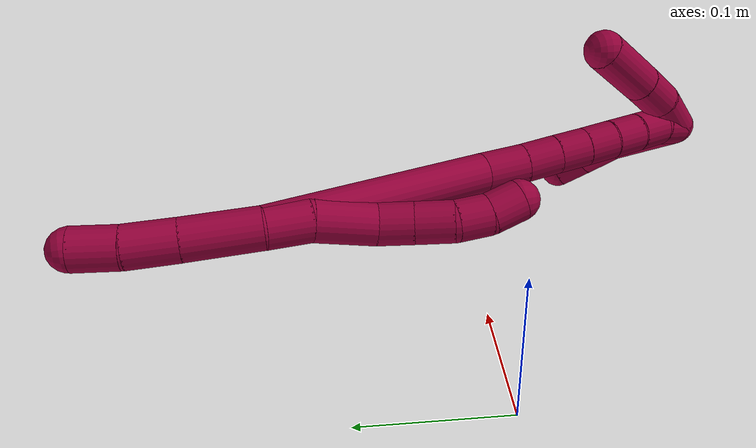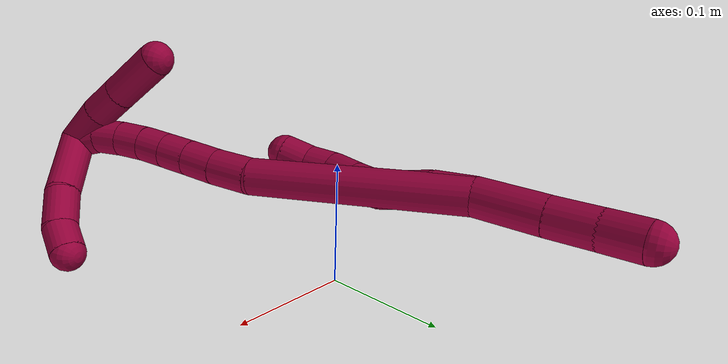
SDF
<sdf version="1.7">
 <world name="default">
  <model name="8">
   <static>0</static>
   <link name="8">
    <collision name="collision-cylinder-e_1_2_8">
     <pose>-8.3e-05 -0.001105 0.013192 0.08355 -0.006267 -0.000262</pose>
     <geometry><cylinder><radius>0.0125</radius><length>0.026476</length></cylinder></geometry>
     <surface>
      <friction><ode><mu>1.16</mu><mu2>1.16</mu2><slip1>0</slip1><slip2>0</slip2></ode></friction>
      <contact><ode><kp>1e+06</kp><kd>1</kd><max_vel>0</max_vel><min_depth>0.001</min_depth></ode></contact>
     </surface>
    </collision>
    <visual name="visual-cylinder-e_1_2_8">
     <pose>-8.3e-05 -0.001105 0.013192 0.08355 -0.006267 -0.000262</pose>
     <geometry><cylinder><radius>0.0125</radius><length>0.026476</length></cylinder></geometry>
     <material><ambient>0.584314 0 0.227451 1</ambient></material>
    </visual>
    <collision name="collision-cylinder-e_2_8_9">
     <pose>-0.004268 -0.003057 0.04482 0.045938 -0.218701 -0.005044</pose>
     <geometry><cylinder><radius>0.0125</radius><length>0.037814</length></cylinder></geometry>
     <surface>
      <friction><ode><mu>1.16</mu><mu2>1.16</mu2><slip1>0</slip1><slip2>0</slip2></ode></friction>
      <contact><ode><kp>1e+06</kp><kd>1</kd><max_vel>0</max_vel><min_depth>0.001</min_depth></ode></contact>
     </surface>
    </collision>
    <visual name="visual-cylinder-e_2_8_9">
     <pose>-0.004268 -0.003057 0.04482 0.045938 -0.218701 -0.005044</pose>
     <geometry><cylinder><radius>0.0125</radius><length>0.037814</length></cylinder></geometry>
     <material><ambient>0.584314 0 0.227451 1</ambient></material>
    </visual>
    <collision name="collision-cylinder-e_3_9_10">
     <pose>-0.008761 -0.001164 0.073826 -0.253764 -0.035816 0.004569</pose>
     <geometry><cylinder><radius>0.0125</radius><length>0.021851</length></cylinder></geometry>
     <surface>
      <friction><ode><mu>1.16</mu><mu2>1.16</mu2><slip1>0</slip1><slip2>0</slip2></ode></friction>
      <contact><ode><kp>1e+06</kp><kd>1</kd><max_vel>0</max_vel><min_depth>0.001</min_depth></ode></contact>
     </surface>
    </collision>
    <visual name="visual-cylinder-e_3_9_10">
     <pose>-0.008761 -0.001164 0.073826 -0.253764 -0.035816 0.004569</pose>
     <geometry><cylinder><radius>0.0125</radius><length>0.021851</length></cylinder></geometry>
     <material><ambient>0.584314 0 0.227451 1</ambient></material>
    </visual>
    <collision name="collision-cylinder-e_4_10_11">
     <pose>-0.009348 0.004868 0.095507 -0.287879 -0.016836 0.00244</pose>
     <geometry><cylinder><radius>0.0125</radius><length>0.023182</length></cylinder></geometry>
     <surface>
      <friction><ode><mu>1.16</mu><mu2>1.16</mu2><slip1>0</slip1><slip2>0</slip2></ode></friction>
      <contact><ode><kp>1e+06</kp><kd>1</kd><max_vel>0</max_vel><min_depth>0.001</min_depth></ode></contact>
     </surface>
    </collision>
    <visual name="visual-cylinder-e_4_10_11">
     <pose>-0.009348 0.004868 0.095507 -0.287879 -0.016836 0.00244</pose>
     <geometry><cylinder><radius>0.0125</radius><length>0.023182</length></cylinder></geometry>
     <material><ambient>0.584314 0 0.227451 1</ambient></material>
    </visual>
    <collision name="collision-cylinder-e_5_11_12">
     <pose>-0.008895 0.008292 0.116706 -0.01325 0.064175 -0.000425</pose>
     <geometry><cylinder><radius>0.0125</radius><length>0.020217</length></cylinder></geometry>
     <surface>
      <friction><ode><mu>1.16</mu><mu2>1.16</mu2><slip1>0</slip1><slip2>0</slip2></ode></friction>
      <contact><ode><kp>1e+06</kp><kd>1</kd><max_vel>0</max_vel><min_depth>0.001</min_depth></ode></contact>
     </surface>
    </collision>
    <visual name="visual-cylinder-e_5_11_12">
     <pose>-0.008895 0.008292 0.116706 -0.01325 0.064175 -0.000425</pose>
     <geometry><cylinder><radius>0.0125</radius><length>0.020217</length></cylinder></geometry>
     <material><ambient>0.584314 0 0.227451 1</ambient></material>
    </visual>
    <collision name="collision-cylinder-e_6_12_6">
     <pose>-0.00543 0.007775 0.136607 0.066229 0.278858 0.009298</pose>
     <geometry><cylinder><radius>0.0125</radius><length>0.02046</length></cylinder></geometry>
     <surface>
      <friction><ode><mu>1.16</mu><mu2>1.16</mu2><slip1>0</slip1><slip2>0</slip2></ode></friction>
      <contact><ode><kp>1e+06</kp><kd>1</kd><max_vel>0</max_vel><min_depth>0.001</min_depth></ode></contact>
     </surface>
    </collision>
    <visual name="visual-cylinder-e_6_12_6">
     <pose>-0.00543 0.007775 0.136607 0.066229 0.278858 0.009298</pose>
     <geometry><cylinder><radius>0.0125</radius><length>0.02046</length></cylinder></geometry>
     <material><ambient>0.584314 0 0.227451 1</ambient></material>
    </visual>
    <collision name="collision-cylinder-e_1_2_13">
     <pose>-0.000456 -0.001193 -0.0222 3.08792 -0.020487 -0.729083</pose>
     <geometry><cylinder><radius>0.0125</radius><length>0.044473</length></cylinder></geometry>
     <surface>
      <friction><ode><mu>1.16</mu><mu2>1.16</mu2><slip1>0</slip1><slip2>0</slip2></ode></friction>
      <contact><ode><kp>1e+06</kp><kd>1</kd><max_vel>0</max_vel><min_depth>0.001</min_depth></ode></contact>
     </surface>
    </collision>
    <visual name="visual-cylinder-e_1_2_13">
     <pose>-0.000456 -0.001193 -0.0222 3.08792 -0.020487 -0.729083</pose>
     <geometry><cylinder><radius>0.0125</radius><length>0.044473</length></cylinder></geometry>
     <material><ambient>0.584314 0 0.227451 1</ambient></material>
    </visual>
    <collision name="collision-cylinder-e_2_13_14">
     <pose>-0.000919 -0.003037 -0.059225 3.09767 -0.000519 -0.023626</pose>
     <geometry><cylinder><radius>0.0125</radius><length>0.029679</length></cylinder></geometry>
     <surface>
      <friction><ode><mu>1.16</mu><mu2>1.16</mu2><slip1>0</slip1><slip2>0</slip2></ode></friction>
      <contact><ode><kp>1e+06</kp><kd>1</kd><max_vel>0</max_vel><min_depth>0.001</min_depth></ode></contact>
     </surface>
    </collision>
    <visual name="visual-cylinder-e_2_13_14">
     <pose>-0.000919 -0.003037 -0.059225 3.09767 -0.000519 -0.023626</pose>
     <geometry><cylinder><radius>0.0125</radius><length>0.029679</length></cylinder></geometry>
     <material><ambient>0.584314 0 0.227451 1</ambient></material>
    </visual>
    <collision name="collision-cylinder-e_3_14_5">
     <pose>-5.6e-05 -0.005553 -0.086809 2.99646 0.067408 0.868566</pose>
     <geometry><cylinder><radius>0.0125</radius><length>0.025849</length></cylinder></geometry>
     <surface>
      <friction><ode><mu>1.16</mu><mu2>1.16</mu2><slip1>0</slip1><slip2>0</slip2></ode></friction>
      <contact><ode><kp>1e+06</kp><kd>1</kd><max_vel>0</max_vel><min_depth>0.001</min_depth></ode></contact>
     </surface>
    </collision>
    <visual name="visual-cylinder-e_3_14_5">
     <pose>-5.6e-05 -0.005553 -0.086809 2.99646 0.067408 0.868566</pose>
     <geometry><cylinder><radius>0.0125</radius><length>0.025849</length></cylinder></geometry>
     <material><ambient>0.584314 0 0.227451 1</ambient></material>
    </visual>
    <collision name="collision-cylinder-e_1_2_15">
     <pose>0.002222 -0.019056 0.070491 0.264018 0.030418 0.004039</pose>
     <geometry><cylinder><radius>0.0125</radius><length>0.146111</length></cylinder></geometry>
     <surface>
      <friction><ode><mu>1.16</mu><mu2>1.16</mu2><slip1>0</slip1><slip2>0</slip2></ode></friction>
      <contact><ode><kp>1e+06</kp><kd>1</kd><max_vel>0</max_vel><min_depth>0.001</min_depth></ode></contact>
     </surface>
    </collision>
    <visual name="visual-cylinder-e_1_2_15">
     <pose>0.002222 -0.019056 0.070491 0.264018 0.030418 0.004039</pose>
     <geometry><cylinder><radius>0.0125</radius><length>0.146111</length></cylinder></geometry>
     <material><ambient>0.584314 0 0.227451 1</ambient></material>
    </visual>
    <collision name="collision-cylinder-e_2_15_16">
     <pose>0.005542 -0.038958 0.155287 0.059075 0.076482 0.002261</pose>
     <geometry><cylinder><radius>0.0125</radius><length>0.028743</length></cylinder></geometry>
     <surface>
      <friction><ode><mu>1.16</mu><mu2>1.16</mu2><slip1>0</slip1><slip2>0</slip2></ode></friction>
      <contact><ode><kp>1e+06</kp><kd>1</kd><max_vel>0</max_vel><min_depth>0.001</min_depth></ode></contact>
     </surface>
    </collision>
    <visual name="visual-cylinder-e_2_15_16">
     <pose>0.005542 -0.038958 0.155287 0.059075 0.076482 0.002261</pose>
     <geometry><cylinder><radius>0.0125</radius><length>0.028743</length></cylinder></geometry>
     <material><ambient>0.584314 0 0.227451 1</ambient></material>
    </visual>
    <collision name="collision-cylinder-e_3_16_17">
     <pose>0.008067 -0.040299 0.181053 0.043191 0.12378 0.002677</pose>
     <geometry><cylinder><radius>0.0125</radius><length>0.023122</length></cylinder></geometry>
     <surface>
      <friction><ode><mu>1.16</mu><mu2>1.16</mu2><slip1>0</slip1><slip2>0</slip2></ode></friction>
      <contact><ode><kp>1e+06</kp><kd>1</kd><max_vel>0</max_vel><min_depth>0.001</min_depth></ode></contact>
     </surface>
    </collision>
    <visual name="visual-cylinder-e_3_16_17">
     <pose>0.008067 -0.040299 0.181053 0.043191 0.12378 0.002677</pose>
     <geometry><cylinder><radius>0.0125</radius><length>0.023122</length></cylinder></geometry>
     <material><ambient>0.584314 0 0.227451 1</ambient></material>
    </visual>
    <collision name="collision-cylinder-e_4_17_18">
     <pose>0.010677 -0.041256 0.202937 0.044254 0.112868 0.0025</pose>
     <geometry><cylinder><radius>0.0125</radius><length>0.020999</length></cylinder></geometry>
     <surface>
      <friction><ode><mu>1.16</mu><mu2>1.16</mu2><slip1>0</slip1><slip2>0</slip2></ode></friction>
      <contact><ode><kp>1e+06</kp><kd>1</kd><max_vel>0</max_vel><min_depth>0.001</min_depth></ode></contact>
     </surface>
    </collision>
    <visual name="visual-cylinder-e_4_17_18">
     <pose>0.010677 -0.041256 0.202937 0.044254 0.112868 0.0025</pose>
     <geometry><cylinder><radius>0.0125</radius><length>0.020999</length></cylinder></geometry>
     <material><ambient>0.584314 0 0.227451 1</ambient></material>
    </visual>
    <collision name="collision-cylinder-e_5_18_19">
     <pose>0.013104 -0.042322 0.223403 0.060079 0.123057 0.003702</pose>
     <geometry><cylinder><radius>0.0125</radius><length>0.020275</length></cylinder></geometry>
     <surface>
      <friction><ode><mu>1.16</mu><mu2>1.16</mu2><slip1>0</slip1><slip2>0</slip2></ode></friction>
      <contact><ode><kp>1e+06</kp><kd>1</kd><max_vel>0</max_vel><min_depth>0.001</min_depth></ode></contact>
     </surface>
    </collision>
    <visual name="visual-cylinder-e_5_18_19">
     <pose>0.013104 -0.042322 0.223403 0.060079 0.123057 0.003702</pose>
     <geometry><cylinder><radius>0.0125</radius><length>0.020275</length></cylinder></geometry>
     <material><ambient>0.584314 0 0.227451 1</ambient></material>
    </visual>
    <collision name="collision-cylinder-e_6_19_20">
     <pose>0.015304 -0.044378 0.243535 0.142927 0.093439 0.006694</pose>
     <geometry><cylinder><radius>0.0125</radius><length>0.020475</length></cylinder></geometry>
     <surface>
      <friction><ode><mu>1.16</mu><mu2>1.16</mu2><slip1>0</slip1><slip2>0</slip2></ode></friction>
      <contact><ode><kp>1e+06</kp><kd>1</kd><max_vel>0</max_vel><min_depth>0.001</min_depth></ode></contact>
     </surface>
    </collision>
    <visual name="visual-cylinder-e_6_19_20">
     <pose>0.015304 -0.044378 0.243535 0.142927 0.093439 0.006694</pose>
     <geometry><cylinder><radius>0.0125</radius><length>0.020475</length></cylinder></geometry>
     <material><ambient>0.584314 0 0.227451 1</ambient></material>
    </visual>
    <collision name="collision-cylinder-e_7_20_21">
     <pose>0.016949 -0.048195 0.263454 0.236174 0.068199 0.008094</pose>
     <geometry><cylinder><radius>0.0125</radius><length>0.020269</length></cylinder></geometry>
     <surface>
      <friction><ode><mu>1.16</mu><mu2>1.16</mu2><slip1>0</slip1><slip2>0</slip2></ode></friction>
      <contact><ode><kp>1e+06</kp><kd>1</kd><max_vel>0</max_vel><min_depth>0.001</min_depth></ode></contact>
     </surface>
    </collision>
    <visual name="visual-cylinder-e_7_20_21">
     <pose>0.016949 -0.048195 0.263454 0.236174 0.068199 0.008094</pose>
     <geometry><cylinder><radius>0.0125</radius><length>0.020269</length></cylinder></geometry>
     <material><ambient>0.584314 0 0.227451 1</ambient></material>
    </visual>
    <collision name="collision-cylinder-e_8_21_1">
     <pose>0.016192 -0.054547 0.282344 0.414474 -0.145242 -0.030589</pose>
     <geometry><cylinder><radius>0.0125</radius><length>0.020006</length></cylinder></geometry>
     <surface>
      <friction><ode><mu>1.16</mu><mu2>1.16</mu2><slip1>0</slip1><slip2>0</slip2></ode></friction>
      <contact><ode><kp>1e+06</kp><kd>1</kd><max_vel>0</max_vel><min_depth>0.001</min_depth></ode></contact>
     </surface>
    </collision>
    <visual name="visual-cylinder-e_8_21_1">
     <pose>0.016192 -0.054547 0.282344 0.414474 -0.145242 -0.030589</pose>
     <geometry><cylinder><radius>0.0125</radius><length>0.020006</length></cylinder></geometry>
     <material><ambient>0.584314 0 0.227451 1</ambient></material>
    </visual>
    <collision name="collision-cylinder-e_1_1_22">
     <pose>0.00643 -0.079207 0.279337 2.09909 -0.33431 -0.57159</pose>
     <geometry><cylinder><radius>0.0125</radius><length>0.050682</length></cylinder></geometry>
     <surface>
      <friction><ode><mu>1.16</mu><mu2>1.16</mu2><slip1>0</slip1><slip2>0</slip2></ode></friction>
      <contact><ode><kp>1e+06</kp><kd>1</kd><max_vel>0</max_vel><min_depth>0.001</min_depth></ode></contact>
     </surface>
    </collision>
    <visual name="visual-cylinder-e_1_1_22">
     <pose>0.00643 -0.079207 0.279337 2.09909 -0.33431 -0.57159</pose>
     <geometry><cylinder><radius>0.0125</radius><length>0.050682</length></cylinder></geometry>
     <material><ambient>0.584314 0 0.227451 1</ambient></material>
    </visual>
    <collision name="collision-cylinder-e_2_22_23">
     <pose>-0.008696 -0.109619 0.260015 2.21118 -0.511161 -0.959919</pose>
     <geometry><cylinder><radius>0.0125</radius><length>0.027846</length></cylinder></geometry>
     <surface>
      <friction><ode><mu>1.16</mu><mu2>1.16</mu2><slip1>0</slip1><slip2>0</slip2></ode></friction>
      <contact><ode><kp>1e+06</kp><kd>1</kd><max_vel>0</max_vel><min_depth>0.001</min_depth></ode></contact>
     </surface>
    </collision>
    <visual name="visual-cylinder-e_2_22_23">
     <pose>-0.008696 -0.109619 0.260015 2.21118 -0.511161 -0.959919</pose>
     <geometry><cylinder><radius>0.0125</radius><length>0.027846</length></cylinder></geometry>
     <material><ambient>0.584314 0 0.227451 1</ambient></material>
    </visual>
    <collision name="collision-cylinder-e_3_23_4">
     <pose>-0.020343 -0.124484 0.244662 2.57714 -0.467313 -1.3746</pose>
     <geometry><cylinder><radius>0.0125</radius><length>0.021472</length></cylinder></geometry>
     <surface>
      <friction><ode><mu>1.16</mu><mu2>1.16</mu2><slip1>0</slip1><slip2>0</slip2></ode></friction>
      <contact><ode><kp>1e+06</kp><kd>1</kd><max_vel>0</max_vel><min_depth>0.001</min_depth></ode></contact>
     </surface>
    </collision>
    <visual name="visual-cylinder-e_3_23_4">
     <pose>-0.020343 -0.124484 0.244662 2.57714 -0.467313 -1.3746</pose>
     <geometry><cylinder><radius>0.0125</radius><length>0.021472</length></cylinder></geometry>
     <material><ambient>0.584314 0 0.227451 1</ambient></material>
    </visual>
    <collision name="collision-cylinder-e_1_1_24">
     <pose>0.025062 -0.052398 0.281581 -2.58331 0.727764 -1.85126</pose>
     <geometry><cylinder><radius>0.0125</radius><length>0.031022</length></cylinder></geometry>
     <surface>
      <friction><ode><mu>1.16</mu><mu2>1.16</mu2><slip1>0</slip1><slip2>0</slip2></ode></friction>
      <contact><ode><kp>1e+06</kp><kd>1</kd><max_vel>0</max_vel><min_depth>0.001</min_depth></ode></contact>
     </surface>
    </collision>
    <visual name="visual-cylinder-e_1_1_24">
     <pose>0.025062 -0.052398 0.281581 -2.58331 0.727764 -1.85126</pose>
     <geometry><cylinder><radius>0.0125</radius><length>0.031022</length></cylinder></geometry>
     <material><ambient>0.584314 0 0.227451 1</ambient></material>
    </visual>
    <collision name="collision-cylinder-e_2_24_25">
     <pose>0.042836 -0.042073 0.261781 -2.74394 0.603299 -1.99226</pose>
     <geometry><cylinder><radius>0.0125</radius><length>0.02628</length></cylinder></geometry>
     <surface>
      <friction><ode><mu>1.16</mu><mu2>1.16</mu2><slip1>0</slip1><slip2>0</slip2></ode></friction>
      <contact><ode><kp>1e+06</kp><kd>1</kd><max_vel>0</max_vel><min_depth>0.001</min_depth></ode></contact>
     </surface>
    </collision>
    <visual name="visual-cylinder-e_2_24_25">
     <pose>0.042836 -0.042073 0.261781 -2.74394 0.603299 -1.99226</pose>
     <geometry><cylinder><radius>0.0125</radius><length>0.02628</length></cylinder></geometry>
     <material><ambient>0.584314 0 0.227451 1</ambient></material>
    </visual>
    <collision name="collision-cylinder-e_3_25_3">
     <pose>0.062421 -0.031784 0.23533 -2.78707 0.604317 -2.09835</pose>
     <geometry><cylinder><radius>0.0125</radius><length>0.042698</length></cylinder></geometry>
     <surface>
      <friction><ode><mu>1.16</mu><mu2>1.16</mu2><slip1>0</slip1><slip2>0</slip2></ode></friction>
      <contact><ode><kp>1e+06</kp><kd>1</kd><max_vel>0</max_vel><min_depth>0.001</min_depth></ode></contact>
     </surface>
    </collision>
    <visual name="visual-cylinder-e_3_25_3">
     <pose>0.062421 -0.031784 0.23533 -2.78707 0.604317 -2.09835</pose>
     <geometry><cylinder><radius>0.0125</radius><length>0.042698</length></cylinder></geometry>
     <material><ambient>0.584314 0 0.227451 1</ambient></material>
    </visual>
    <collision name="collision-sphere-3">
     <pose>0.074552 -0.025685 0.218854 0 -0 0</pose>
     <geometry><sphere><radius>0.0125</radius></sphere></geometry>
     <surface>
      <friction><ode><mu>1.16</mu><mu2>1.16</mu2><slip1>0</slip1><slip2>0</slip2></ode></friction>
      <contact><ode><kp>1e+06</kp><kd>1</kd><max_vel>0</max_vel><min_depth>0.001</min_depth></ode></contact>
     </surface>
    </collision>
    <visual name="visual-sphere-3">
     <pose>0.074552 -0.025685 0.218854 0 -0 0</pose>
     <geometry><sphere><radius>0.0125</radius></sphere></geometry>
     <material><ambient>0.584314 0 0.227451 1</ambient></material>
    </visual>
    <collision name="collision-sphere-25">
     <pose>0.050291 -0.037882 0.251805 0 -0 0</pose>
     <geometry><sphere><radius>0.0125</radius></sphere></geometry>
     <surface>
      <friction><ode><mu>1.16</mu><mu2>1.16</mu2><slip1>0</slip1><slip2>0</slip2></ode></friction>
      <contact><ode><kp>1e+06</kp><kd>1</kd><max_vel>0</max_vel><min_depth>0.001</min_depth></ode></contact>
     </surface>
    </collision>
    <visual name="visual-sphere-25">
     <pose>0.050291 -0.037882 0.251805 0 -0 0</pose>
     <geometry><sphere><radius>0.0125</radius></sphere></geometry>
     <material><ambient>0.584314 0 0.227451 1</ambient></material>
    </visual>
    <collision name="collision-sphere-24">
     <pose>0.03538 -0.046263 0.271758 0 -0 0</pose>
     <geometry><sphere><radius>0.0125</radius></sphere></geometry>
     <surface>
      <friction><ode><mu>1.16</mu><mu2>1.16</mu2><slip1>0</slip1><slip2>0</slip2></ode></friction>
      <contact><ode><kp>1e+06</kp><kd>1</kd><max_vel>0</max_vel><min_depth>0.001</min_depth></ode></contact>
     </surface>
    </collision>
    <visual name="visual-sphere-24">
     <pose>0.03538 -0.046263 0.271758 0 -0 0</pose>
     <geometry><sphere><radius>0.0125</radius></sphere></geometry>
     <material><ambient>0.584314 0 0.227451 1</ambient></material>
    </visual>
    <collision name="collision-sphere-4">
     <pose>-0.02518 -0.129611 0.236563 0 -0 0</pose>
     <geometry><sphere><radius>0.0125</radius></sphere></geometry>
     <surface>
      <friction><ode><mu>1.16</mu><mu2>1.16</mu2><slip1>0</slip1><slip2>0</slip2></ode></friction>
      <contact><ode><kp>1e+06</kp><kd>1</kd><max_vel>0</max_vel><min_depth>0.001</min_depth></ode></contact>
     </surface>
    </collision>
    <visual name="visual-sphere-4">
     <pose>-0.02518 -0.129611 0.236563 0 -0 0</pose>
     <geometry><sphere><radius>0.0125</radius></sphere></geometry>
     <material><ambient>0.584314 0 0.227451 1</ambient></material>
    </visual>
    <collision name="collision-sphere-23">
     <pose>-0.015507 -0.119356 0.25276 0 -0 0</pose>
     <geometry><sphere><radius>0.0125</radius></sphere></geometry>
     <surface>
      <friction><ode><mu>1.16</mu><mu2>1.16</mu2><slip1>0</slip1><slip2>0</slip2></ode></friction>
      <contact><ode><kp>1e+06</kp><kd>1</kd><max_vel>0</max_vel><min_depth>0.001</min_depth></ode></contact>
     </surface>
    </collision>
    <visual name="visual-sphere-23">
     <pose>-0.015507 -0.119356 0.25276 0 -0 0</pose>
     <geometry><sphere><radius>0.0125</radius></sphere></geometry>
     <material><ambient>0.584314 0 0.227451 1</ambient></material>
    </visual>
    <collision name="collision-sphere-22">
     <pose>-0.001885 -0.099882 0.267271 0 -0 0</pose>
     <geometry><sphere><radius>0.0125</radius></sphere></geometry>
     <surface>
      <friction><ode><mu>1.16</mu><mu2>1.16</mu2><slip1>0</slip1><slip2>0</slip2></ode></friction>
      <contact><ode><kp>1e+06</kp><kd>1</kd><max_vel>0</max_vel><min_depth>0.001</min_depth></ode></contact>
     </surface>
    </collision>
    <visual name="visual-sphere-22">
     <pose>-0.001885 -0.099882 0.267271 0 -0 0</pose>
     <geometry><sphere><radius>0.0125</radius></sphere></geometry>
     <material><ambient>0.584314 0 0.227451 1</ambient></material>
    </visual>
    <collision name="collision-sphere-1">
     <pose>0.014745 -0.058533 0.291404 0 -0 0</pose>
     <geometry><sphere><radius>0.0125</radius></sphere></geometry>
     <surface>
      <friction><ode><mu>1.16</mu><mu2>1.16</mu2><slip1>0</slip1><slip2>0</slip2></ode></friction>
      <contact><ode><kp>1e+06</kp><kd>1</kd><max_vel>0</max_vel><min_depth>0.001</min_depth></ode></contact>
     </surface>
    </collision>
    <visual name="visual-sphere-1">
     <pose>0.014745 -0.058533 0.291404 0 -0 0</pose>
     <geometry><sphere><radius>0.0125</radius></sphere></geometry>
     <material><ambient>0.584314 0 0.227451 1</ambient></material>
    </visual>
    <collision name="collision-sphere-21">
     <pose>0.01764 -0.050561 0.273284 0 -0 0</pose>
     <geometry><sphere><radius>0.0125</radius></sphere></geometry>
     <surface>
      <friction><ode><mu>1.16</mu><mu2>1.16</mu2><slip1>0</slip1><slip2>0</slip2></ode></friction>
      <contact><ode><kp>1e+06</kp><kd>1</kd><max_vel>0</max_vel><min_depth>0.001</min_depth></ode></contact>
     </surface>
    </collision>
    <visual name="visual-sphere-21">
     <pose>0.01764 -0.050561 0.273284 0 -0 0</pose>
     <geometry><sphere><radius>0.0125</radius></sphere></geometry>
     <material><ambient>0.584314 0 0.227451 1</ambient></material>
    </visual>
    <collision name="collision-sphere-12">
     <pose>-0.008246 0.008426 0.126793 0 -0 0</pose>
     <geometry><sphere><radius>0.0125</radius></sphere></geometry>
     <surface>
      <friction><ode><mu>1.16</mu><mu2>1.16</mu2><slip1>0</slip1><slip2>0</slip2></ode></friction>
      <contact><ode><kp>1e+06</kp><kd>1</kd><max_vel>0</max_vel><min_depth>0.001</min_depth></ode></contact>
     </surface>
    </collision>
    <visual name="visual-sphere-12">
     <pose>-0.008246 0.008426 0.126793 0 -0 0</pose>
     <geometry><sphere><radius>0.0125</radius></sphere></geometry>
     <material><ambient>0.584314 0 0.227451 1</ambient></material>
    </visual>
    <collision name="collision-sphere-11">
     <pose>-0.009543 0.008158 0.10662 0 -0 0</pose>
     <geometry><sphere><radius>0.0125</radius></sphere></geometry>
     <surface>
      <friction><ode><mu>1.16</mu><mu2>1.16</mu2><slip1>0</slip1><slip2>0</slip2></ode></friction>
      <contact><ode><kp>1e+06</kp><kd>1</kd><max_vel>0</max_vel><min_depth>0.001</min_depth></ode></contact>
     </surface>
    </collision>
    <visual name="visual-sphere-11">
     <pose>-0.009543 0.008158 0.10662 0 -0 0</pose>
     <geometry><sphere><radius>0.0125</radius></sphere></geometry>
     <material><ambient>0.584314 0 0.227451 1</ambient></material>
    </visual>
    <collision name="collision-sphere-10">
     <pose>-0.009153 0.001578 0.084395 0 -0 0</pose>
     <geometry><sphere><radius>0.0125</radius></sphere></geometry>
     <surface>
      <friction><ode><mu>1.16</mu><mu2>1.16</mu2><slip1>0</slip1><slip2>0</slip2></ode></friction>
      <contact><ode><kp>1e+06</kp><kd>1</kd><max_vel>0</max_vel><min_depth>0.001</min_depth></ode></contact>
     </surface>
    </collision>
    <visual name="visual-sphere-10">
     <pose>-0.009153 0.001578 0.084395 0 -0 0</pose>
     <geometry><sphere><radius>0.0125</radius></sphere></geometry>
     <material><ambient>0.584314 0 0.227451 1</ambient></material>
    </visual>
    <collision name="collision-sphere-9">
     <pose>-0.00837 -0.003905 0.063258 0 -0 0</pose>
     <geometry><sphere><radius>0.0125</radius></sphere></geometry>
     <surface>
      <friction><ode><mu>1.16</mu><mu2>1.16</mu2><slip1>0</slip1><slip2>0</slip2></ode></friction>
      <contact><ode><kp>1e+06</kp><kd>1</kd><max_vel>0</max_vel><min_depth>0.001</min_depth></ode></contact>
     </surface>
    </collision>
    <visual name="visual-sphere-9">
     <pose>-0.00837 -0.003905 0.063258 0 -0 0</pose>
     <geometry><sphere><radius>0.0125</radius></sphere></geometry>
     <material><ambient>0.584314 0 0.227451 1</ambient></material>
    </visual>
    <collision name="collision-sphere-2">
     <geometry><sphere><radius>0.0125</radius></sphere></geometry>
     <surface>
      <friction><ode><mu>1.16</mu><mu2>1.16</mu2><slip1>0</slip1><slip2>0</slip2></ode></friction>
      <contact><ode><kp>1e+06</kp><kd>1</kd><max_vel>0</max_vel><min_depth>0.001</min_depth></ode></contact>
     </surface>
    </collision>
    <visual name="visual-sphere-2">
     <geometry><sphere><radius>0.0125</radius></sphere></geometry>
     <material><ambient>0.584314 0 0.227451 1</ambient></material>
    </visual>
    <collision name="collision-sphere-19">
     <pose>0.014348 -0.042926 0.233445 0 -0 0</pose>
     <geometry><sphere><radius>0.0125</radius></sphere></geometry>
     <surface>
      <friction><ode><mu>1.16</mu><mu2>1.16</mu2><slip1>0</slip1><slip2>0</slip2></ode></friction>
      <contact><ode><kp>1e+06</kp><kd>1</kd><max_vel>0</max_vel><min_depth>0.001</min_depth></ode></contact>
     </surface>
    </collision>
    <visual name="visual-sphere-19">
     <pose>0.014348 -0.042926 0.233445 0 -0 0</pose>
     <geometry><sphere><radius>0.0125</radius></sphere></geometry>
     <material><ambient>0.584314 0 0.227451 1</ambient></material>
    </visual>
    <collision name="collision-sphere-8">
     <pose>-0.000166 -0.002209 0.026383 0 -0 0</pose>
     <geometry><sphere><radius>0.0125</radius></sphere></geometry>
     <surface>
      <friction><ode><mu>1.16</mu><mu2>1.16</mu2><slip1>0</slip1><slip2>0</slip2></ode></friction>
      <contact><ode><kp>1e+06</kp><kd>1</kd><max_vel>0</max_vel><min_depth>0.001</min_depth></ode></contact>
     </surface>
    </collision>
    <visual name="visual-sphere-8">
     <pose>-0.000166 -0.002209 0.026383 0 -0 0</pose>
     <geometry><sphere><radius>0.0125</radius></sphere></geometry>
     <material><ambient>0.584314 0 0.227451 1</ambient></material>
    </visual>
    <collision name="collision-sphere-6">
     <pose>-0.002614 0.007124 0.14642 0 -0 0</pose>
     <geometry><sphere><radius>0.0125</radius></sphere></geometry>
     <surface>
      <friction><ode><mu>1.16</mu><mu2>1.16</mu2><slip1>0</slip1><slip2>0</slip2></ode></friction>
      <contact><ode><kp>1e+06</kp><kd>1</kd><max_vel>0</max_vel><min_depth>0.001</min_depth></ode></contact>
     </surface>
    </collision>
    <visual name="visual-sphere-6">
     <pose>-0.002614 0.007124 0.14642 0 -0 0</pose>
     <geometry><sphere><radius>0.0125</radius></sphere></geometry>
     <material><ambient>0.584314 0 0.227451 1</ambient></material>
    </visual>
    <collision name="collision-sphere-13">
     <pose>-0.000911 -0.002385 -0.0444 0 -0 0</pose>
     <geometry><sphere><radius>0.0125</radius></sphere></geometry>
     <surface>
      <friction><ode><mu>1.16</mu><mu2>1.16</mu2><slip1>0</slip1><slip2>0</slip2></ode></friction>
      <contact><ode><kp>1e+06</kp><kd>1</kd><max_vel>0</max_vel><min_depth>0.001</min_depth></ode></contact>
     </surface>
    </collision>
    <visual name="visual-sphere-13">
     <pose>-0.000911 -0.002385 -0.0444 0 -0 0</pose>
     <geometry><sphere><radius>0.0125</radius></sphere></geometry>
     <material><ambient>0.584314 0 0.227451 1</ambient></material>
    </visual>
    <collision name="collision-sphere-14">
     <pose>-0.000926 -0.003689 -0.074049 0 -0 0</pose>
     <geometry><sphere><radius>0.0125</radius></sphere></geometry>
     <surface>
      <friction><ode><mu>1.16</mu><mu2>1.16</mu2><slip1>0</slip1><slip2>0</slip2></ode></friction>
      <contact><ode><kp>1e+06</kp><kd>1</kd><max_vel>0</max_vel><min_depth>0.001</min_depth></ode></contact>
     </surface>
    </collision>
    <visual name="visual-sphere-14">
     <pose>-0.000926 -0.003689 -0.074049 0 -0 0</pose>
     <geometry><sphere><radius>0.0125</radius></sphere></geometry>
     <material><ambient>0.584314 0 0.227451 1</ambient></material>
    </visual>
    <collision name="collision-sphere-5">
     <pose>0.000815 -0.007418 -0.099568 0 -0 0</pose>
     <geometry><sphere><radius>0.0125</radius></sphere></geometry>
     <surface>
      <friction><ode><mu>1.16</mu><mu2>1.16</mu2><slip1>0</slip1><slip2>0</slip2></ode></friction>
      <contact><ode><kp>1e+06</kp><kd>1</kd><max_vel>0</max_vel><min_depth>0.001</min_depth></ode></contact>
     </surface>
    </collision>
    <visual name="visual-sphere-5">
     <pose>0.000815 -0.007418 -0.099568 0 -0 0</pose>
     <geometry><sphere><radius>0.0125</radius></sphere></geometry>
     <material><ambient>0.584314 0 0.227451 1</ambient></material>
    </visual>
    <collision name="collision-sphere-15">
     <pose>0.004444 -0.038112 0.140983 0 -0 0</pose>
     <geometry><sphere><radius>0.0125</radius></sphere></geometry>
     <surface>
      <friction><ode><mu>1.16</mu><mu2>1.16</mu2><slip1>0</slip1><slip2>0</slip2></ode></friction>
      <contact><ode><kp>1e+06</kp><kd>1</kd><max_vel>0</max_vel><min_depth>0.001</min_depth></ode></contact>
     </surface>
    </collision>
    <visual name="visual-sphere-15">
     <pose>0.004444 -0.038112 0.140983 0 -0 0</pose>
     <geometry><sphere><radius>0.0125</radius></sphere></geometry>
     <material><ambient>0.584314 0 0.227451 1</ambient></material>
    </visual>
    <collision name="collision-sphere-16">
     <pose>0.00664 -0.039804 0.169592 0 -0 0</pose>
     <geometry><sphere><radius>0.0125</radius></sphere></geometry>
     <surface>
      <friction><ode><mu>1.16</mu><mu2>1.16</mu2><slip1>0</slip1><slip2>0</slip2></ode></friction>
      <contact><ode><kp>1e+06</kp><kd>1</kd><max_vel>0</max_vel><min_depth>0.001</min_depth></ode></contact>
     </surface>
    </collision>
    <visual name="visual-sphere-16">
     <pose>0.00664 -0.039804 0.169592 0 -0 0</pose>
     <geometry><sphere><radius>0.0125</radius></sphere></geometry>
     <material><ambient>0.584314 0 0.227451 1</ambient></material>
    </visual>
    <collision name="collision-sphere-17">
     <pose>0.009495 -0.040794 0.192515 0 -0 0</pose>
     <geometry><sphere><radius>0.0125</radius></sphere></geometry>
     <surface>
      <friction><ode><mu>1.16</mu><mu2>1.16</mu2><slip1>0</slip1><slip2>0</slip2></ode></friction>
      <contact><ode><kp>1e+06</kp><kd>1</kd><max_vel>0</max_vel><min_depth>0.001</min_depth></ode></contact>
     </surface>
    </collision>
    <visual name="visual-sphere-17">
     <pose>0.009495 -0.040794 0.192515 0 -0 0</pose>
     <geometry><sphere><radius>0.0125</radius></sphere></geometry>
     <material><ambient>0.584314 0 0.227451 1</ambient></material>
    </visual>
    <collision name="collision-sphere-18">
     <pose>0.01186 -0.041717 0.21336 0 -0 0</pose>
     <geometry><sphere><radius>0.0125</radius></sphere></geometry>
     <surface>
      <friction><ode><mu>1.16</mu><mu2>1.16</mu2><slip1>0</slip1><slip2>0</slip2></ode></friction>
      <contact><ode><kp>1e+06</kp><kd>1</kd><max_vel>0</max_vel><min_depth>0.001</min_depth></ode></contact>
     </surface>
    </collision>
    <visual name="visual-sphere-18">
     <pose>0.01186 -0.041717 0.21336 0 -0 0</pose>
     <geometry><sphere><radius>0.0125</radius></sphere></geometry>
     <material><ambient>0.584314 0 0.227451 1</ambient></material>
    </visual>
    <collision name="collision-sphere-20">
     <pose>0.016259 -0.045829 0.253624 0 -0 0</pose>
     <geometry><sphere><radius>0.0125</radius></sphere></geometry>
     <surface>
      <friction><ode><mu>1.16</mu><mu2>1.16</mu2><slip1>0</slip1><slip2>0</slip2></ode></friction>
      <contact><ode><kp>1e+06</kp><kd>1</kd><max_vel>0</max_vel><min_depth>0.001</min_depth></ode></contact>
     </surface>
    </collision>
    <visual name="visual-sphere-20">
     <pose>0.016259 -0.045829 0.253624 0 -0 0</pose>
     <geometry><sphere><radius>0.0125</radius></sphere></geometry>
     <material><ambient>0.584314 0 0.227451 1</ambient></material>
    </visual>
    <inertial>
     <pose>0.00726 -0.031177 0.136088 0 -0 0</pose>
     <mass>0.75</mass>
     <inertia>
      <ixx>0.000291</ixx>
      <ixy>0</ixy>
      <ixz>0</ixz>
      <iyy>0.000246</iyy>
      <iyz>0</iyz>
      <izz>8.6e-05</izz>
     </inertia>
    </inertial>
   </link>
   <pose>0.031866 0.141297 0.121911 1.594 -1.32551 0.1596</pose>
  </model>
 </world>
</sdf>
